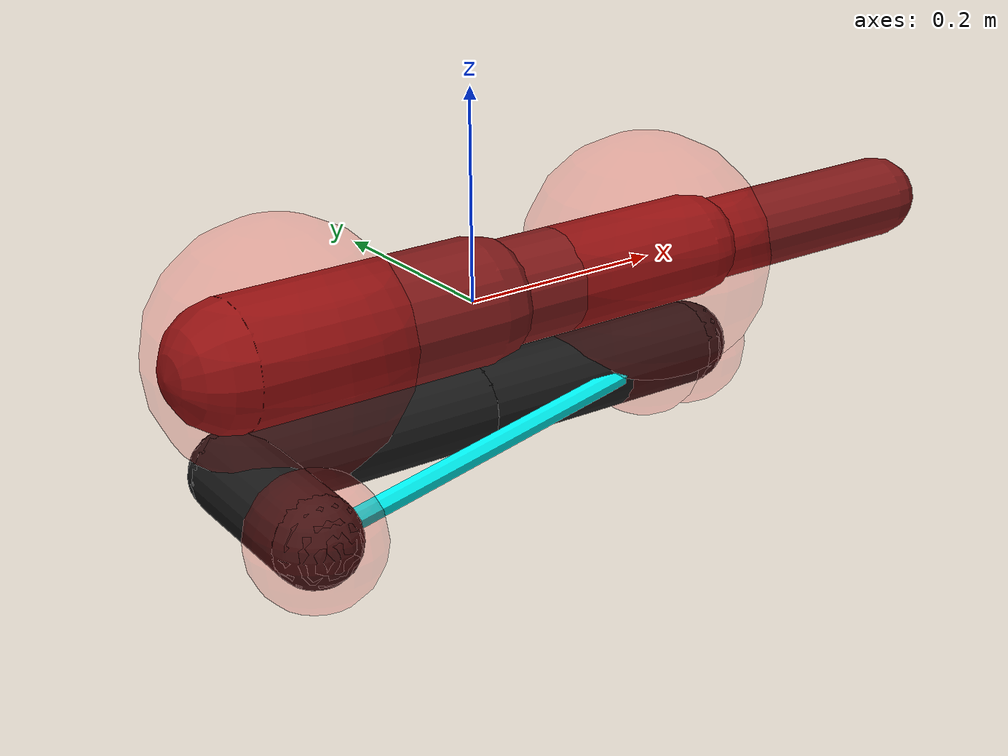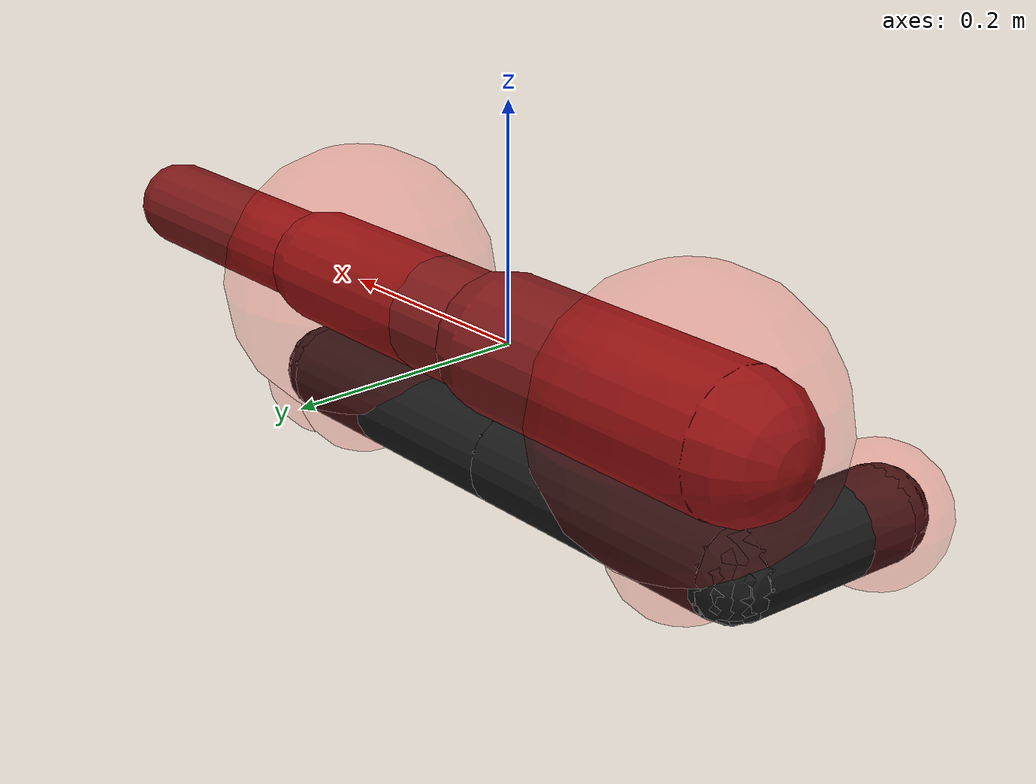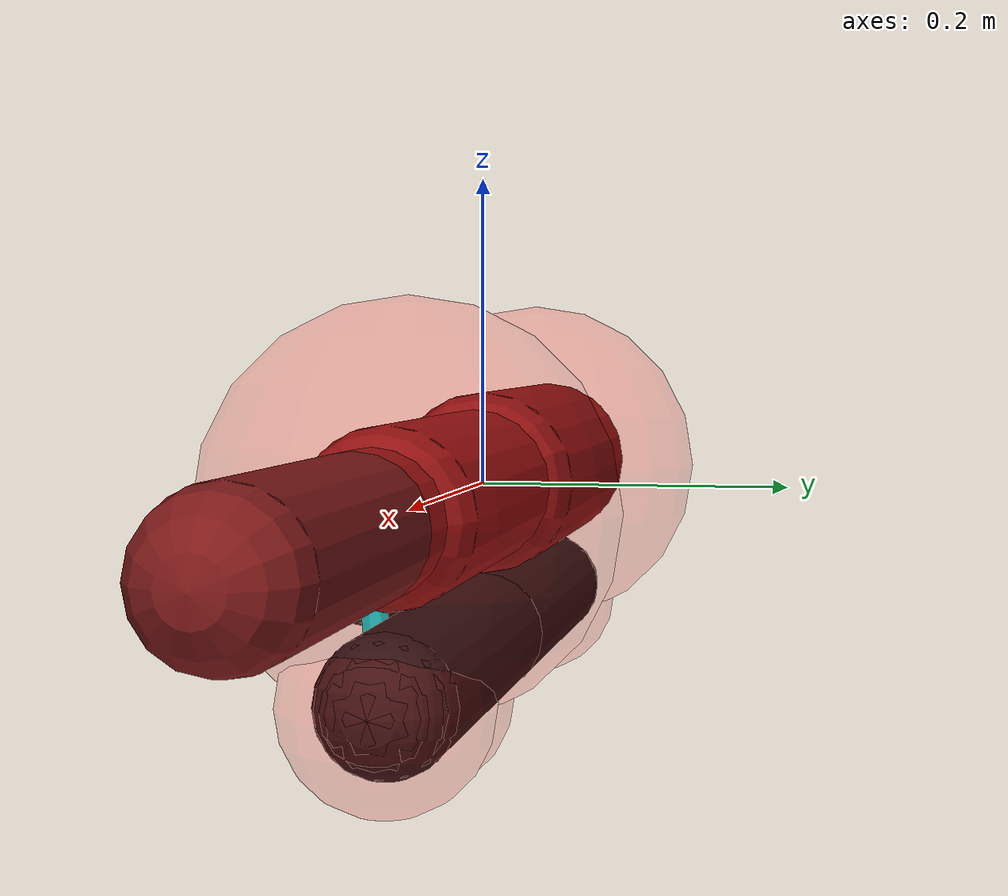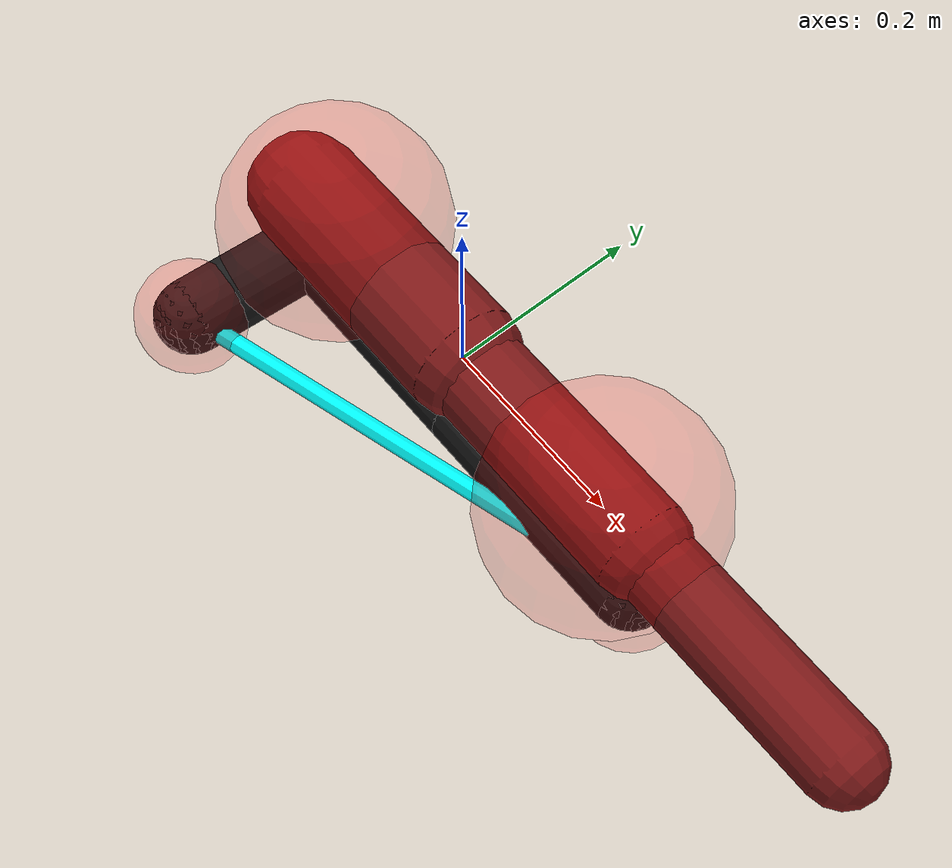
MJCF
<mujoco model="finger with orthotic">
    <option timestep="0.005" iterations="50" solver="Newton" tolerance="1e-8" integrator="Euler">
        <flag gravity="disable" contact="disable" energy="enable" />
    </option>

    <compiler angle="degree" />

    <visual>
        <rgba haze=".3 .3 .3 1" />
    </visual>

    <default>
        <joint type="hinge" pos="0 0 0" axis="0 0 1" stiffness="100" damping="10.0" />
        <site size="0.06" rgba="1 0 0 .2" />
        <geom type="capsule" size="0.01" rgba=".1 .1 .1 1" />
        <tendon width="0.01" rgba="0 1 1 1" />
    </default>

    <asset>
        <texture type="skybox" builtin="gradient" rgb1="0.6 0.6 0.6" rgb2="0 0 0" width="512" height="512" />
        <texture name="texplane" type="2d" builtin="checker" rgb1=".25 .25 .25" rgb2=".3 .3 .3" width="512" height="512" mark="cross" markrgb=".8 .8 .8" />
        <material name="matplane" reflectance="0.3" texture="texplane" texrepeat="1 1" texuniform="true" />
    </asset>

    <worldbody>
        <light directional="true" diffuse=".8 .8 .8" specular=".2 .2 .2" pos="0 0 5" dir="0 0 -1" />
        <camera name="cam" pos="0 0 -1.2" xyaxes="1.000 0 0 0 -1.000 0" />

        <body name="finger" pos="0 0 0">
            <geom name="finger1" type="capsule" size="0.06" fromto="0 0 0  -.25 0 0" rgba=".5 .1 .1 1" />
            <site name="sPIPL" pos="-.2 0 0" size="0.12" />

            <body pos="0 0 0">
                <geom name="finger2" type="capsule" size="0.05" fromto="0 0 0  .25 0 0" rgba=".5 .1 .1 1" />
                <joint name="PIP" pos="0 0 0" stiffness="0" damping="0" />
                <site name="sPIPR" pos=".2 0 0" size="0.12" />

                <body pos=".25 0 0">
                    <geom name="finger3" type="capsule" size="0.04" fromto="0 0 0  .25 0 0" rgba=".5 .1 .1 1" />
                </body>
            </body>
        </body>

        <body name="orthosis" pos="0 0 -.1">
            <geom name="beamB" type="capsule" size="0.04" fromto="0.0 0.0 0.0 -0.25 -3.061616997868383e-17 0.0" />
            <site name="hBAL" pos="-.2 0 0" size="0.06" />

            <body name="Bnext" pos="0 0 0">
                <joint name="hingeBA" type="hinge" pos="0 0 0" axis="0 0 1" stiffness="100" damping="10.0" />
                <site name="hBAR" pos=".2 0 0" size="0.06" />
                <geom name="beamA" type="capsule" size="0.04" fromto="0.0 0.0 0.0 0.25 0.0 0.0" />

                <body name="Anext" pos="0.25 0.0 0.0">
                    <joint name="hingeAL" type="hinge" pos="0 0 0" axis="0 0 1" stiffness="100" damping="10.0" />
                    <geom name="smallBodyAL" type="sphere" size="0.04" pos="0 0 0" />
                    <site name="hAL" pos="0 0 0" size="0.06" />
                </body>
            </body>

            <geom name="beamD" type="capsule" size="0.04" fromto="-0.25 -3.061616997868383e-17 0.0 -0.2598076211353316 -0.15000000000000002 0.0" />
            <body name="Dnext" pos="-0.2598076211353316 -0.15000000000000002 0.0">
                <joint name="hingeDL" type="hinge" pos="0 0 0" axis="0 0 -1" stiffness="100" damping="10.0" />
                <geom name="smallBodyDL" type="sphere" size="0.04" pos="0 0 0" />
                <site name="hDL" pos="0 0 0" size="0.06" />
            </body>
        </body>
    </worldbody>

    <equality>
        <weld site1="hBAR" site2="sPIPR"/>
    </equality>

    <tendon>
        <spatial name="bendingTendon" springlength="0.5314167955265112" width="0.01" stiffness="100" damping="10">
            <site site="hDL" />
            <site site="hAL" />
        </spatial>

        <spatial name="extensionTendon" limited="true" springlength="0 0.5314167955265112" range="0 0.5314167955265112" solimplimit="0.001 0.001 0.001 0.5 1" solreflimit="-10000 -0" >
            <site site="hDL" />
            <site site="hAL" />
        </spatial>
    </tendon>

    <actuator>
        <motor name="finger_bend" joint="PIP" ctrlrange="-10 10" gear="100" />
    </actuator>

    <sensor>
        <force name="finger_force" site="sPIPR" />
        <torque name="finger_torque" site="sPIPR" />
        <force name="tendon_force" site="hDL" />
    </sensor>
</mujoco>
